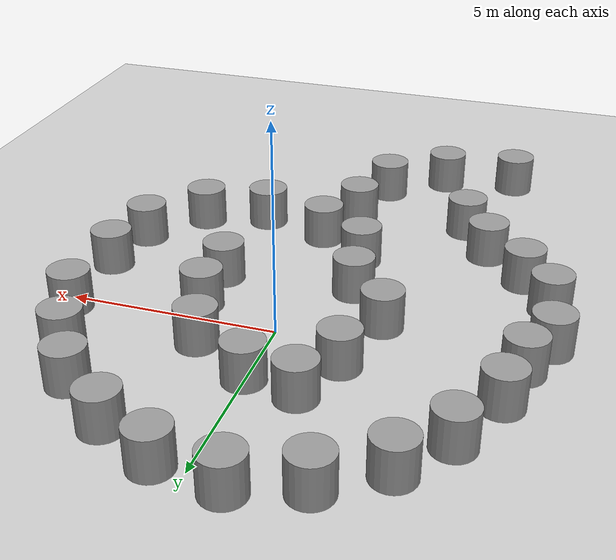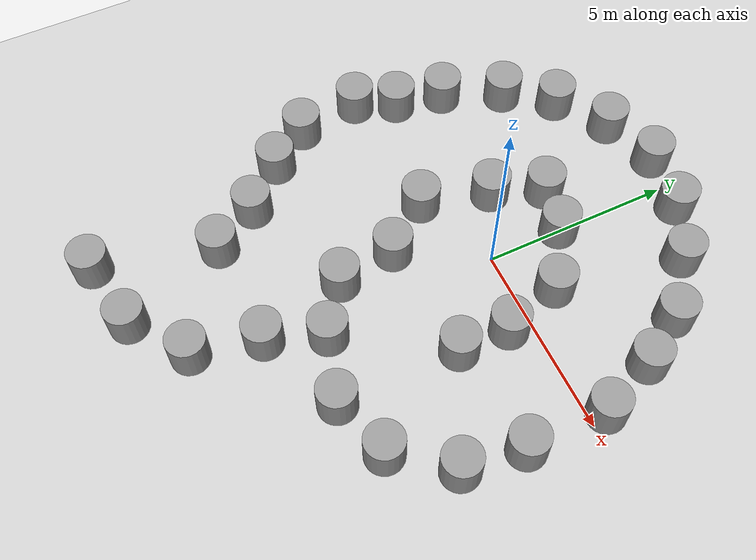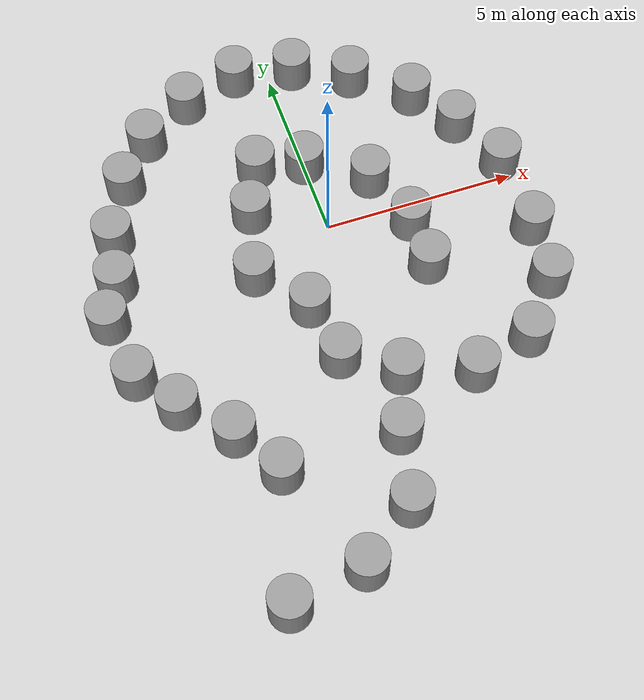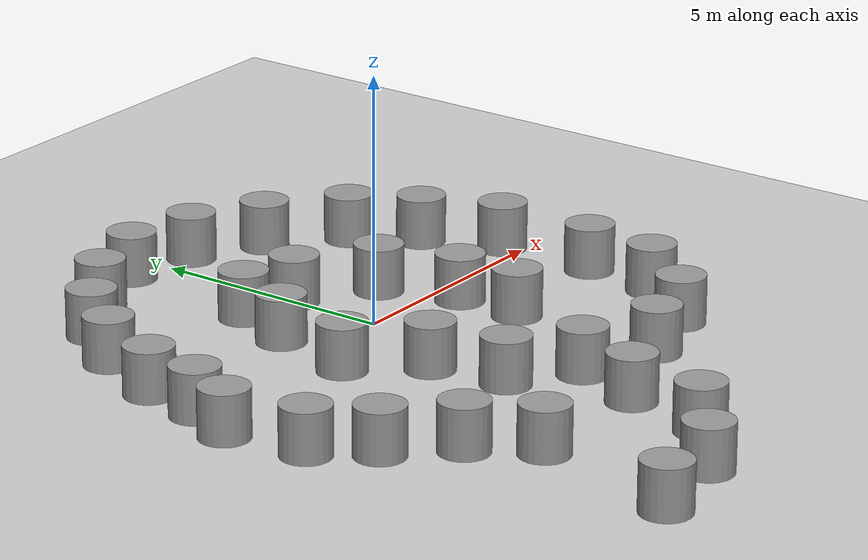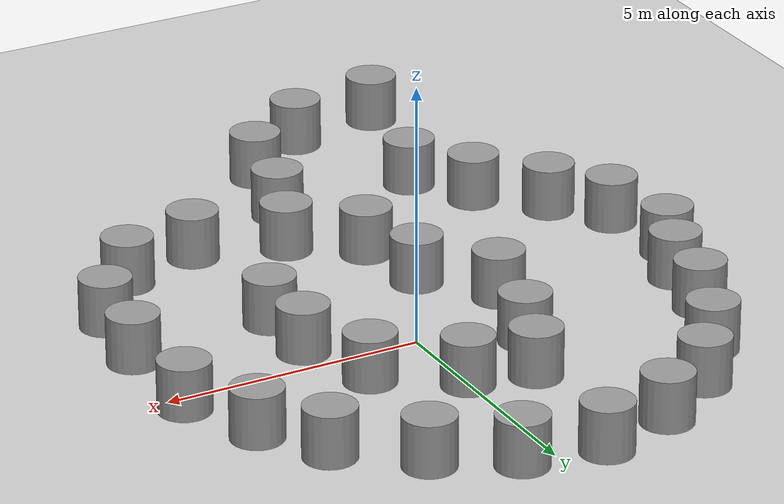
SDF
<sdf version="1.6">
 <world name="default">
  <light name="sun" type="directional">
   <pose>0 0 10 0 -0 0</pose>
   <diffuse>0.8 0.8 0.8 1</diffuse>
   <specular>0.2 0.2 0.2 1</specular>
   <attenuation>
    <range>1000</range>
    <constant>0.9</constant>
    <linear>0.01</linear>
    <quadratic>0.001</quadratic>
   </attenuation>
   <direction>-0.5 0.1 -0.9</direction>
  </light>
  <model name="ground_plane">
   <static>1</static>
   <link name="link">
    <collision name="collision">
     <geometry><plane><normal>0 0 1</normal><size>100 100</size></plane></geometry>
     <surface>
      <contact><collide_bitmask>65535</collide_bitmask></contact>
      <friction><ode><mu>100</mu><mu2>50</mu2></ode></friction>
     </surface>
    </collision>
    <visual name="visual">
     <cast_shadows>0</cast_shadows>
     <geometry><plane><normal>0 0 1</normal><size>100 100</size></plane></geometry>
     <material>
      <script><uri>file://media/materials/scripts/gazebo.material</uri><name>Gazebo/Grey</name></script>
     </material>
    </visual>
   </link>
  </model>
  <gravity>0 0 -9.8</gravity>
  <magnetic_field>6e-06 2.3e-05 -4.2e-05</magnetic_field>
  <atmosphere type="adiabatic"/>
  <physics name="default_physics" default="0" type="ode">
   <max_step_size>0.001</max_step_size>
   <real_time_factor>1</real_time_factor>
   <real_time_update_rate>1000</real_time_update_rate>
  </physics>
  <scene><ambient>0.4 0.4 0.4 1</ambient><background>0.7 0.7 0.7 1</background><shadows>1</shadows></scene>
  <spherical_coordinates>
   <surface_model>EARTH_WGS84</surface_model>
   <latitude_deg>0</latitude_deg>
   <longitude_deg>0</longitude_deg>
   <elevation>0</elevation>
   <heading_deg>0</heading_deg>
  </spherical_coordinates>
  <model name="unit_cylinder">
   <pose>0.011695 1.93243 0.499992 -3e-06 2e-06 0</pose>
   <link name="link">
    <inertial>
     <mass>1</mass>
     <inertia><ixx>0.145833</ixx><ixy>0</ixy><ixz>0</ixz><iyy>0.145833</iyy><iyz>0</iyz><izz>0.125</izz></inertia>
    </inertial>
    <collision name="collision">
     <geometry><cylinder><radius>0.5</radius><length>1</length></cylinder></geometry>
    </collision>
    <visual name="visual">
     <geometry><cylinder><radius>0.5</radius><length>1</length></cylinder></geometry>
     <material>
      <script><name>Gazebo/Grey</name><uri>file://media/materials/scripts/gazebo.material</uri></script>
     </material>
    </visual>
   </link>
  </model>
  <model name="unit_cylinder_clone">
   <pose>1.46897 0.975592 0.499998 3e-06 -2e-06 0</pose>
   <link name="link">
    <inertial>
     <mass>1</mass>
     <inertia><ixx>0.145833</ixx><ixy>0</ixy><ixz>0</ixz><iyy>0.145833</iyy><iyz>0</iyz><izz>0.125</izz></inertia>
    </inertial>
    <collision name="collision">
     <geometry><cylinder><radius>0.5</radius><length>1</length></cylinder></geometry>
    </collision>
    <visual name="visual">
     <geometry><cylinder><radius>0.5</radius><length>1</length></cylinder></geometry>
     <material>
      <script><name>Gazebo/Grey</name><uri>file://media/materials/scripts/gazebo.material</uri></script>
     </material>
    </visual>
   </link>
  </model>
  <model name="unit_cylinder_clone_0">
   <pose>1.99003 -0.599604 0.499992 -3e-06 2e-06 0</pose>
   <link name="link">
    <inertial>
     <mass>1</mass>
     <inertia><ixx>0.145833</ixx><ixy>0</ixy><ixz>0</ixz><iyy>0.145833</iyy><iyz>0</iyz><izz>0.125</izz></inertia>
    </inertial>
    <collision name="collision">
     <geometry><cylinder><radius>0.5</radius><length>1</length></cylinder></geometry>
    </collision>
    <visual name="visual">
     <geometry><cylinder><radius>0.5</radius><length>1</length></cylinder></geometry>
     <material>
      <script><name>Gazebo/Grey</name><uri>file://media/materials/scripts/gazebo.material</uri></script>
     </material>
    </visual>
   </link>
  </model>
  <model name="unit_cylinder_clone_1">
   <pose>-1.74922 0.884758 0.499992 -3e-06 2e-06 0</pose>
   <link name="link">
    <inertial>
     <mass>1</mass>
     <inertia><ixx>0.145833</ixx><ixy>0</ixy><ixz>0</ixz><iyy>0.145833</iyy><iyz>0</iyz><izz>0.125</izz></inertia>
    </inertial>
    <collision name="collision">
     <geometry><cylinder><radius>0.5</radius><length>1</length></cylinder></geometry>
    </collision>
    <visual name="visual">
     <geometry><cylinder><radius>0.5</radius><length>1</length></cylinder></geometry>
     <material>
      <script><name>Gazebo/Grey</name><uri>file://media/materials/scripts/gazebo.material</uri></script>
     </material>
    </visual>
   </link>
  </model>
  <model name="unit_cylinder_clone_2">
   <pose>-1.21979 2.20428 0.499992 -3e-06 2e-06 0</pose>
   <link name="link">
    <inertial>
     <mass>1</mass>
     <inertia><ixx>0.145833</ixx><ixy>0</ixy><ixz>0</ixz><iyy>0.145833</iyy><iyz>0</iyz><izz>0.125</izz></inertia>
    </inertial>
    <collision name="collision">
     <geometry><cylinder><radius>0.5</radius><length>1</length></cylinder></geometry>
    </collision>
    <visual name="visual">
     <geometry><cylinder><radius>0.5</radius><length>1</length></cylinder></geometry>
     <material>
      <script><name>Gazebo/Grey</name><uri>file://media/materials/scripts/gazebo.material</uri></script>
     </material>
    </visual>
   </link>
  </model>
  <model name="unit_cylinder_clone_3">
   <pose>-2.21365 -0.908479 0.499997 3e-06 -2e-06 0</pose>
   <link name="link">
    <inertial>
     <mass>1</mass>
     <inertia><ixx>0.145833</ixx><ixy>0</ixy><ixz>0</ixz><iyy>0.145833</iyy><iyz>0</iyz><izz>0.125</izz></inertia>
    </inertial>
    <collision name="collision">
     <geometry><cylinder><radius>0.5</radius><length>1</length></cylinder></geometry>
    </collision>
    <visual name="visual">
     <geometry><cylinder><radius>0.5</radius><length>1</length></cylinder></geometry>
     <material>
      <script><name>Gazebo/Grey</name><uri>file://media/materials/scripts/gazebo.material</uri></script>
     </material>
    </visual>
   </link>
  </model>
  <model name="unit_cylinder_clone_4">
   <pose>-1.197 -2.19099 0.499992 -3e-06 2e-06 0</pose>
   <link name="link">
    <inertial>
     <mass>1</mass>
     <inertia><ixx>0.145833</ixx><ixy>0</ixy><ixz>0</ixz><iyy>0.145833</iyy><iyz>0</iyz><izz>0.125</izz></inertia>
    </inertial>
    <collision name="collision">
     <geometry><cylinder><radius>0.5</radius><length>1</length></cylinder></geometry>
    </collision>
    <visual name="visual">
     <geometry><cylinder><radius>0.5</radius><length>1</length></cylinder></geometry>
     <material>
      <script><name>Gazebo/Grey</name><uri>file://media/materials/scripts/gazebo.material</uri></script>
     </material>
    </visual>
   </link>
  </model>
  <model name="unit_cylinder_clone_5">
   <pose>1.97815 -1.94731 0.499997 3e-06 -2e-06 0</pose>
   <link name="link">
    <inertial>
     <mass>1</mass>
     <inertia><ixx>0.145833</ixx><ixy>0</ixy><ixz>0</ixz><iyy>0.145833</iyy><iyz>0</iyz><izz>0.125</izz></inertia>
    </inertial>
    <collision name="collision">
     <geometry><cylinder><radius>0.5</radius><length>1</length></cylinder></geometry>
    </collision>
    <visual name="visual">
     <geometry><cylinder><radius>0.5</radius><length>1</length></cylinder></geometry>
     <material>
      <script><name>Gazebo/Grey</name><uri>file://media/materials/scripts/gazebo.material</uri></script>
     </material>
    </visual>
   </link>
  </model>
  <model name="unit_cylinder_clone_6">
   <pose>-0.959282 -3.7425 0.499997 3e-06 -2e-06 0</pose>
   <link name="link">
    <inertial>
     <mass>1</mass>
     <inertia><ixx>0.145833</ixx><ixy>0</ixy><ixz>0</ixz><iyy>0.145833</iyy><iyz>0</iyz><izz>0.125</izz></inertia>
    </inertial>
    <collision name="collision">
     <geometry><cylinder><radius>0.5</radius><length>1</length></cylinder></geometry>
    </collision>
    <visual name="visual">
     <geometry><cylinder><radius>0.5</radius><length>1</length></cylinder></geometry>
     <material>
      <script><name>Gazebo/Grey</name><uri>file://media/materials/scripts/gazebo.material</uri></script>
     </material>
    </visual>
   </link>
  </model>
  <model name="unit_cylinder_clone_7">
   <pose>0.276687 -4.60917 0.499992 -3e-06 3e-06 0</pose>
   <link name="link">
    <inertial>
     <mass>1</mass>
     <inertia><ixx>0.145833</ixx><ixy>0</ixy><ixz>0</ixz><iyy>0.145833</iyy><iyz>0</iyz><izz>0.125</izz></inertia>
    </inertial>
    <collision name="collision">
     <geometry><cylinder><radius>0.5</radius><length>1</length></cylinder></geometry>
    </collision>
    <visual name="visual">
     <geometry><cylinder><radius>0.5</radius><length>1</length></cylinder></geometry>
     <material>
      <script><name>Gazebo/Grey</name><uri>file://media/materials/scripts/gazebo.material</uri></script>
     </material>
    </visual>
   </link>
  </model>
  <model name="unit_cylinder_clone_8">
   <pose>1.97733 -5.13167 0.499992 -3e-06 3e-06 0</pose>
   <link name="link">
    <inertial>
     <mass>1</mass>
     <inertia><ixx>0.145833</ixx><ixy>0</ixy><ixz>0</ixz><iyy>0.145833</iyy><iyz>0</iyz><izz>0.125</izz></inertia>
    </inertial>
    <collision name="collision">
     <geometry><cylinder><radius>0.5</radius><length>1</length></cylinder></geometry>
    </collision>
    <visual name="visual">
     <geometry><cylinder><radius>0.5</radius><length>1</length></cylinder></geometry>
     <material>
      <script><name>Gazebo/Grey</name><uri>file://media/materials/scripts/gazebo.material</uri></script>
     </material>
    </visual>
   </link>
  </model>
  <model name="unit_cylinder_clone_9">
   <pose>3.54612 -4.66547 0.499992 -3e-06 3e-06 0</pose>
   <link name="link">
    <inertial>
     <mass>1</mass>
     <inertia><ixx>0.145833</ixx><ixy>0</ixy><ixz>0</ixz><iyy>0.145833</iyy><iyz>0</iyz><izz>0.125</izz></inertia>
    </inertial>
    <collision name="collision">
     <geometry><cylinder><radius>0.5</radius><length>1</length></cylinder></geometry>
    </collision>
    <visual name="visual">
     <geometry><cylinder><radius>0.5</radius><length>1</length></cylinder></geometry>
     <material>
      <script><name>Gazebo/Grey</name><uri>file://media/materials/scripts/gazebo.material</uri></script>
     </material>
    </visual>
   </link>
  </model>
  <model name="unit_cylinder_clone_10">
   <pose>4.63711 -3.29501 0.499998 3e-06 -3e-06 0</pose>
   <link name="link">
    <inertial>
     <mass>1</mass>
     <inertia><ixx>0.145833</ixx><ixy>0</ixy><ixz>0</ixz><iyy>0.145833</iyy><iyz>0</iyz><izz>0.125</izz></inertia>
    </inertial>
    <collision name="collision">
     <geometry><cylinder><radius>0.5</radius><length>1</length></cylinder></geometry>
    </collision>
    <visual name="visual">
     <geometry><cylinder><radius>0.5</radius><length>1</length></cylinder></geometry>
     <material>
      <script><name>Gazebo/Grey</name><uri>file://media/materials/scripts/gazebo.material</uri></script>
     </material>
    </visual>
   </link>
  </model>
  <model name="unit_cylinder_clone_11">
   <pose>4.83701 -1.71026 0.499992 -3e-06 3e-06 0</pose>
   <link name="link">
    <inertial>
     <mass>1</mass>
     <inertia><ixx>0.145833</ixx><ixy>0</ixy><ixz>0</ixz><iyy>0.145833</iyy><iyz>0</iyz><izz>0.125</izz></inertia>
    </inertial>
    <collision name="collision">
     <geometry><cylinder><radius>0.5</radius><length>1</length></cylinder></geometry>
    </collision>
    <visual name="visual">
     <geometry><cylinder><radius>0.5</radius><length>1</length></cylinder></geometry>
     <material>
      <script><name>Gazebo/Grey</name><uri>file://media/materials/scripts/gazebo.material</uri></script>
     </material>
    </visual>
   </link>
  </model>
  <model name="unit_cylinder_clone_12">
   <pose>4.84629 0.395645 0.499998 3e-06 -3e-06 0</pose>
   <link name="link">
    <inertial>
     <mass>1</mass>
     <inertia><ixx>0.145833</ixx><ixy>0</ixy><ixz>0</ixz><iyy>0.145833</iyy><iyz>0</iyz><izz>0.125</izz></inertia>
    </inertial>
    <collision name="collision">
     <geometry><cylinder><radius>0.5</radius><length>1</length></cylinder></geometry>
    </collision>
    <visual name="visual">
     <geometry><cylinder><radius>0.5</radius><length>1</length></cylinder></geometry>
     <material>
      <script><name>Gazebo/Grey</name><uri>file://media/materials/scripts/gazebo.material</uri></script>
     </material>
    </visual>
   </link>
  </model>
  <model name="unit_cylinder_clone_13">
   <pose>4.20069 1.93925 0.499992 -3e-06 3e-06 0</pose>
   <link name="link">
    <inertial>
     <mass>1</mass>
     <inertia><ixx>0.145833</ixx><ixy>0</ixy><ixz>0</ixz><iyy>0.145833</iyy><iyz>0</iyz><izz>0.125</izz></inertia>
    </inertial>
    <collision name="collision">
     <geometry><cylinder><radius>0.5</radius><length>1</length></cylinder></geometry>
    </collision>
    <visual name="visual">
     <geometry><cylinder><radius>0.5</radius><length>1</length></cylinder></geometry>
     <material>
      <script><name>Gazebo/Grey</name><uri>file://media/materials/scripts/gazebo.material</uri></script>
     </material>
    </visual>
   </link>
  </model>
  <model name="unit_cylinder_clone_14">
   <pose>3.4233 3.17462 0.499998 3e-06 -3e-06 0</pose>
   <link name="link">
    <inertial>
     <mass>1</mass>
     <inertia><ixx>0.145833</ixx><ixy>0</ixy><ixz>0</ixz><iyy>0.145833</iyy><iyz>0</iyz><izz>0.125</izz></inertia>
    </inertial>
    <collision name="collision">
     <geometry><cylinder><radius>0.5</radius><length>1</length></cylinder></geometry>
    </collision>
    <visual name="visual">
     <geometry><cylinder><radius>0.5</radius><length>1</length></cylinder></geometry>
     <material>
      <script><name>Gazebo/Grey</name><uri>file://media/materials/scripts/gazebo.material</uri></script>
     </material>
    </visual>
   </link>
  </model>
  <model name="unit_cylinder_clone_15">
   <pose>2.08295 4.28331 0.499998 3e-06 -3e-06 0</pose>
   <link name="link">
    <inertial>
     <mass>1</mass>
     <inertia><ixx>0.145833</ixx><ixy>0</ixy><ixz>0</ixz><iyy>0.145833</iyy><iyz>0</iyz><izz>0.125</izz></inertia>
    </inertial>
    <collision name="collision">
     <geometry><cylinder><radius>0.5</radius><length>1</length></cylinder></geometry>
    </collision>
    <visual name="visual">
     <geometry><cylinder><radius>0.5</radius><length>1</length></cylinder></geometry>
     <material>
      <script><name>Gazebo/Grey</name><uri>file://media/materials/scripts/gazebo.material</uri></script>
     </material>
    </visual>
   </link>
  </model>
  <model name="unit_cylinder_clone_16">
   <pose>0.675461 5.03169 0.499992 -3e-06 3e-06 0</pose>
   <link name="link">
    <inertial>
     <mass>1</mass>
     <inertia><ixx>0.145833</ixx><ixy>0</ixy><ixz>0</ixz><iyy>0.145833</iyy><iyz>0</iyz><izz>0.125</izz></inertia>
    </inertial>
    <collision name="collision">
     <geometry><cylinder><radius>0.5</radius><length>1</length></cylinder></geometry>
    </collision>
    <visual name="visual">
     <geometry><cylinder><radius>0.5</radius><length>1</length></cylinder></geometry>
     <material>
      <script><name>Gazebo/Grey</name><uri>file://media/materials/scripts/gazebo.material</uri></script>
     </material>
    </visual>
   </link>
  </model>
  <model name="unit_cylinder_clone_17">
   <pose>-0.86184 5.28693 0.499992 -3e-06 3e-06 0</pose>
   <link name="link">
    <inertial>
     <mass>1</mass>
     <inertia><ixx>0.145833</ixx><ixy>0</ixy><ixz>0</ixz><iyy>0.145833</iyy><iyz>0</iyz><izz>0.125</izz></inertia>
    </inertial>
    <collision name="collision">
     <geometry><cylinder><radius>0.5</radius><length>1</length></cylinder></geometry>
    </collision>
    <visual name="visual">
     <geometry><cylinder><radius>0.5</radius><length>1</length></cylinder></geometry>
     <material>
      <script><name>Gazebo/Grey</name><uri>file://media/materials/scripts/gazebo.material</uri></script>
     </material>
    </visual>
   </link>
  </model>
  <model name="unit_cylinder_clone_17_clone">
   <pose>-2.35872 4.82032 0.499997 4e-06 4e-06 -0</pose>
   <link name="link">
    <inertial>
     <mass>1</mass>
     <inertia><ixx>0.145833</ixx><ixy>0</ixy><ixz>0</ixz><iyy>0.145833</iyy><iyz>0</iyz><izz>0.125</izz></inertia>
    </inertial>
    <collision name="collision">
     <geometry><cylinder><radius>0.5</radius><length>1</length></cylinder></geometry>
    </collision>
    <visual name="visual">
     <geometry><cylinder><radius>0.5</radius><length>1</length></cylinder></geometry>
     <material>
      <script><name>Gazebo/Grey</name><uri>file://media/materials/scripts/gazebo.material</uri></script>
     </material>
    </visual>
   </link>
  </model>
  <model name="unit_cylinder_clone_17_clone_0">
   <pose>-3.66459 3.93958 0.499998 3e-06 -3e-06 0</pose>
   <link name="link">
    <inertial>
     <mass>1</mass>
     <inertia><ixx>0.145833</ixx><ixy>0</ixy><ixz>0</ixz><iyy>0.145833</iyy><iyz>0</iyz><izz>0.125</izz></inertia>
    </inertial>
    <collision name="collision">
     <geometry><cylinder><radius>0.5</radius><length>1</length></cylinder></geometry>
    </collision>
    <visual name="visual">
     <geometry><cylinder><radius>0.5</radius><length>1</length></cylinder></geometry>
     <material>
      <script><name>Gazebo/Grey</name><uri>file://media/materials/scripts/gazebo.material</uri></script>
     </material>
    </visual>
   </link>
  </model>
  <model name="unit_cylinder_clone_17_clone_1">
   <pose>-4.55218 2.77709 0.499998 3e-06 -3e-06 0</pose>
   <link name="link">
    <inertial>
     <mass>1</mass>
     <inertia><ixx>0.145833</ixx><ixy>0</ixy><ixz>0</ixz><iyy>0.145833</iyy><iyz>0</iyz><izz>0.125</izz></inertia>
    </inertial>
    <collision name="collision">
     <geometry><cylinder><radius>0.5</radius><length>1</length></cylinder></geometry>
    </collision>
    <visual name="visual">
     <geometry><cylinder><radius>0.5</radius><length>1</length></cylinder></geometry>
     <material>
      <script><name>Gazebo/Grey</name><uri>file://media/materials/scripts/gazebo.material</uri></script>
     </material>
    </visual>
   </link>
  </model>
  <model name="unit_cylinder_clone_17_clone_2">
   <pose>-5.2346 1.23672 0.499998 3e-06 -3e-06 0</pose>
   <link name="link">
    <inertial>
     <mass>1</mass>
     <inertia><ixx>0.145833</ixx><ixy>0</ixy><ixz>0</ixz><iyy>0.145833</iyy><iyz>0</iyz><izz>0.125</izz></inertia>
    </inertial>
    <collision name="collision">
     <geometry><cylinder><radius>0.5</radius><length>1</length></cylinder></geometry>
    </collision>
    <visual name="visual">
     <geometry><cylinder><radius>0.5</radius><length>1</length></cylinder></geometry>
     <material>
      <script><name>Gazebo/Grey</name><uri>file://media/materials/scripts/gazebo.material</uri></script>
     </material>
    </visual>
   </link>
  </model>
  <model name="unit_cylinder_clone_17_clone_3">
   <pose>-5.48715 -0.048304 0.499992 -3e-06 -4e-06 -0</pose>
   <link name="link">
    <inertial>
     <mass>1</mass>
     <inertia><ixx>0.145833</ixx><ixy>0</ixy><ixz>0</ixz><iyy>0.145833</iyy><iyz>0</iyz><izz>0.125</izz></inertia>
    </inertial>
    <collision name="collision">
     <geometry><cylinder><radius>0.5</radius><length>1</length></cylinder></geometry>
    </collision>
    <visual name="visual">
     <geometry><cylinder><radius>0.5</radius><length>1</length></cylinder></geometry>
     <material>
      <script><name>Gazebo/Grey</name><uri>file://media/materials/scripts/gazebo.material</uri></script>
     </material>
    </visual>
   </link>
  </model>
  <model name="unit_cylinder_clone_17_clone_3_clone">
   <pose>-5.9424 -1.08502 0.499992 -3e-06 3e-06 0</pose>
   <link name="link">
    <inertial>
     <mass>1</mass>
     <inertia><ixx>0.145833</ixx><ixy>0</ixy><ixz>0</ixz><iyy>0.145833</iyy><iyz>0</iyz><izz>0.125</izz></inertia>
    </inertial>
    <collision name="collision">
     <geometry><cylinder><radius>0.5</radius><length>1</length></cylinder></geometry>
    </collision>
    <visual name="visual">
     <geometry><cylinder><radius>0.5</radius><length>1</length></cylinder></geometry>
     <material>
      <script><name>Gazebo/Grey</name><uri>file://media/materials/scripts/gazebo.material</uri></script>
     </material>
    </visual>
   </link>
  </model>
  <model name="unit_cylinder_clone_17_clone_3_clone_0">
   <pose>-5.72147 -2.75194 0.499992 -3e-06 3e-06 0</pose>
   <link name="link">
    <inertial>
     <mass>1</mass>
     <inertia><ixx>0.145833</ixx><ixy>0</ixy><ixz>0</ixz><iyy>0.145833</iyy><iyz>0</iyz><izz>0.125</izz></inertia>
    </inertial>
    <collision name="collision">
     <geometry><cylinder><radius>0.5</radius><length>1</length></cylinder></geometry>
    </collision>
    <visual name="visual">
     <geometry><cylinder><radius>0.5</radius><length>1</length></cylinder></geometry>
     <material>
      <script><name>Gazebo/Grey</name><uri>file://media/materials/scripts/gazebo.material</uri></script>
     </material>
    </visual>
   </link>
  </model>
  <model name="unit_cylinder_clone_17_clone_3_clone_1">
   <pose>-4.96007 -3.8198 0.499992 -3e-06 4e-06 0</pose>
   <link name="link">
    <inertial>
     <mass>1</mass>
     <inertia><ixx>0.145833</ixx><ixy>0</ixy><ixz>0</ixz><iyy>0.145833</iyy><iyz>0</iyz><izz>0.125</izz></inertia>
    </inertial>
    <collision name="collision">
     <geometry><cylinder><radius>0.5</radius><length>1</length></cylinder></geometry>
    </collision>
    <visual name="visual">
     <geometry><cylinder><radius>0.5</radius><length>1</length></cylinder></geometry>
     <material>
      <script><name>Gazebo/Grey</name><uri>file://media/materials/scripts/gazebo.material</uri></script>
     </material>
    </visual>
   </link>
  </model>
  <model name="unit_cylinder_clone_17_clone_3_clone_2">
   <pose>-3.9152 -4.90366 0.499992 -3e-06 4e-06 0</pose>
   <link name="link">
    <inertial>
     <mass>1</mass>
     <inertia><ixx>0.145833</ixx><ixy>0</ixy><ixz>0</ixz><iyy>0.145833</iyy><iyz>0</iyz><izz>0.125</izz></inertia>
    </inertial>
    <collision name="collision">
     <geometry><cylinder><radius>0.5</radius><length>1</length></cylinder></geometry>
    </collision>
    <visual name="visual">
     <geometry><cylinder><radius>0.5</radius><length>1</length></cylinder></geometry>
     <material>
      <script><name>Gazebo/Grey</name><uri>file://media/materials/scripts/gazebo.material</uri></script>
     </material>
    </visual>
   </link>
  </model>
  <model name="unit_cylinder_clone_17_clone_3_clone_3">
   <pose>-3.1701 -6.1196 0.499992 -3e-06 4e-06 0</pose>
   <link name="link">
    <inertial>
     <mass>1</mass>
     <inertia><ixx>0.145833</ixx><ixy>0</ixy><ixz>0</ixz><iyy>0.145833</iyy><iyz>0</iyz><izz>0.125</izz></inertia>
    </inertial>
    <collision name="collision">
     <geometry><cylinder><radius>0.5</radius><length>1</length></cylinder></geometry>
    </collision>
    <visual name="visual">
     <geometry><cylinder><radius>0.5</radius><length>1</length></cylinder></geometry>
     <material>
      <script><name>Gazebo/Grey</name><uri>file://media/materials/scripts/gazebo.material</uri></script>
     </material>
    </visual>
   </link>
  </model>
  <model name="unit_cylinder_clone_17_clone_3_clone_3_clone">
   <pose>-0.27722 -6.0591 0.499993 -3e-06 -3e-06 0</pose>
   <link name="link">
    <inertial>
     <mass>1</mass>
     <inertia><ixx>0.145833</ixx><ixy>0</ixy><ixz>0</ixz><iyy>0.145833</iyy><iyz>0</iyz><izz>0.125</izz></inertia>
    </inertial>
    <collision name="collision">
     <geometry><cylinder><radius>0.5</radius><length>1</length></cylinder></geometry>
    </collision>
    <visual name="visual">
     <geometry><cylinder><radius>0.5</radius><length>1</length></cylinder></geometry>
     <material>
      <script><name>Gazebo/Grey</name><uri>file://media/materials/scripts/gazebo.material</uri></script>
     </material>
    </visual>
   </link>
  </model>
  <model name="unit_cylinder_clone_17_clone_3_clone_3_clone_0">
   <pose>-0.683396 -7.79769 0.499997 3e-06 3e-06 0</pose>
   <link name="link">
    <inertial>
     <mass>1</mass>
     <inertia><ixx>0.145833</ixx><ixy>0</ixy><ixz>0</ixz><iyy>0.145833</iyy><iyz>0</iyz><izz>0.125</izz></inertia>
    </inertial>
    <collision name="collision">
     <geometry><cylinder><radius>0.5</radius><length>1</length></cylinder></geometry>
    </collision>
    <visual name="visual">
     <geometry><cylinder><radius>0.5</radius><length>1</length></cylinder></geometry>
     <material>
      <script><name>Gazebo/Grey</name><uri>file://media/materials/scripts/gazebo.material</uri></script>
     </material>
    </visual>
   </link>
  </model>
  <model name="unit_cylinder_clone_17_clone_3_clone_3_clone_1">
   <pose>-2.10897 -8.86083 0.499997 3e-06 3e-06 0</pose>
   <link name="link">
    <inertial>
     <mass>1</mass>
     <inertia><ixx>0.145833</ixx><ixy>0</ixy><ixz>0</ixz><iyy>0.145833</iyy><iyz>0</iyz><izz>0.125</izz></inertia>
    </inertial>
    <collision name="collision">
     <geometry><cylinder><radius>0.5</radius><length>1</length></cylinder></geometry>
    </collision>
    <visual name="visual">
     <geometry><cylinder><radius>0.5</radius><length>1</length></cylinder></geometry>
     <material>
      <script><name>Gazebo/Grey</name><uri>file://media/materials/scripts/gazebo.material</uri></script>
     </material>
    </visual>
   </link>
  </model>
  <model name="unit_cylinder_clone_17_clone_3_clone_3_clone_2">
   <pose>-3.97473 -9.1931 0.499997 3e-06 3e-06 0</pose>
   <link name="link">
    <inertial>
     <mass>1</mass>
     <inertia><ixx>0.145833</ixx><ixy>0</ixy><ixz>0</ixz><iyy>0.145833</iyy><iyz>0</iyz><izz>0.125</izz></inertia>
    </inertial>
    <collision name="collision">
     <geometry><cylinder><radius>0.5</radius><length>1</length></cylinder></geometry>
    </collision>
    <visual name="visual">
     <geometry><cylinder><radius>0.5</radius><length>1</length></cylinder></geometry>
     <material>
      <script><name>Gazebo/Grey</name><uri>file://media/materials/scripts/gazebo.material</uri></script>
     </material>
    </visual>
   </link>
  </model>
 </world>
</sdf>
